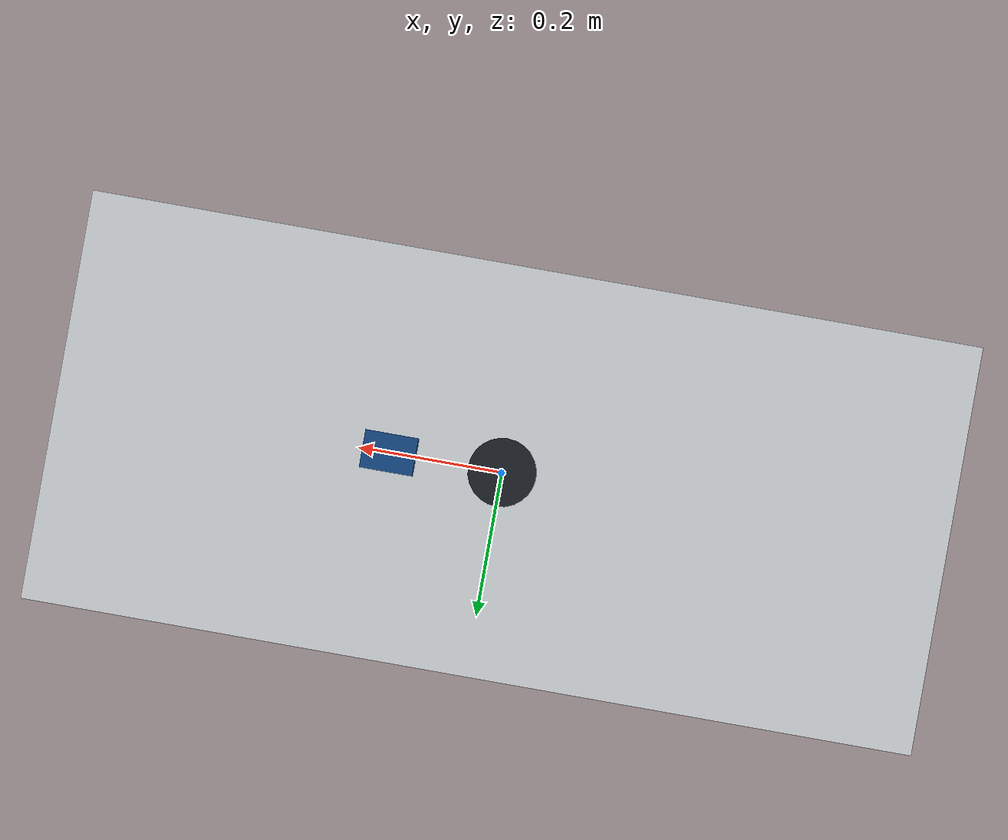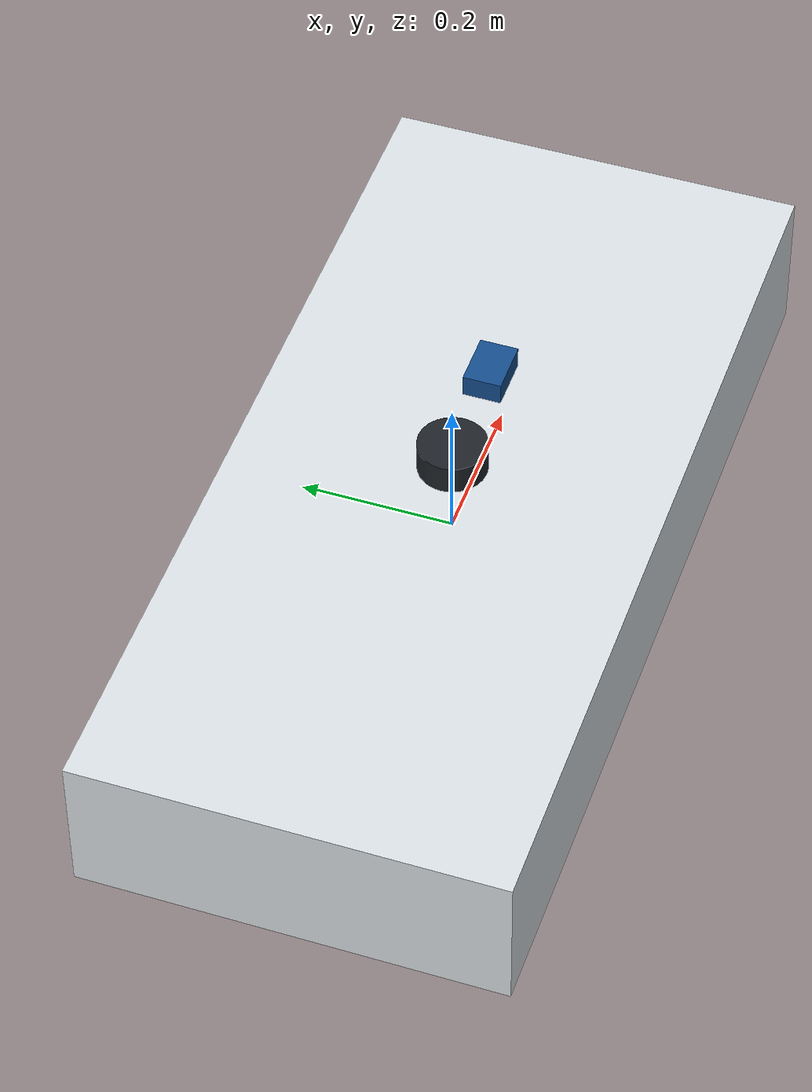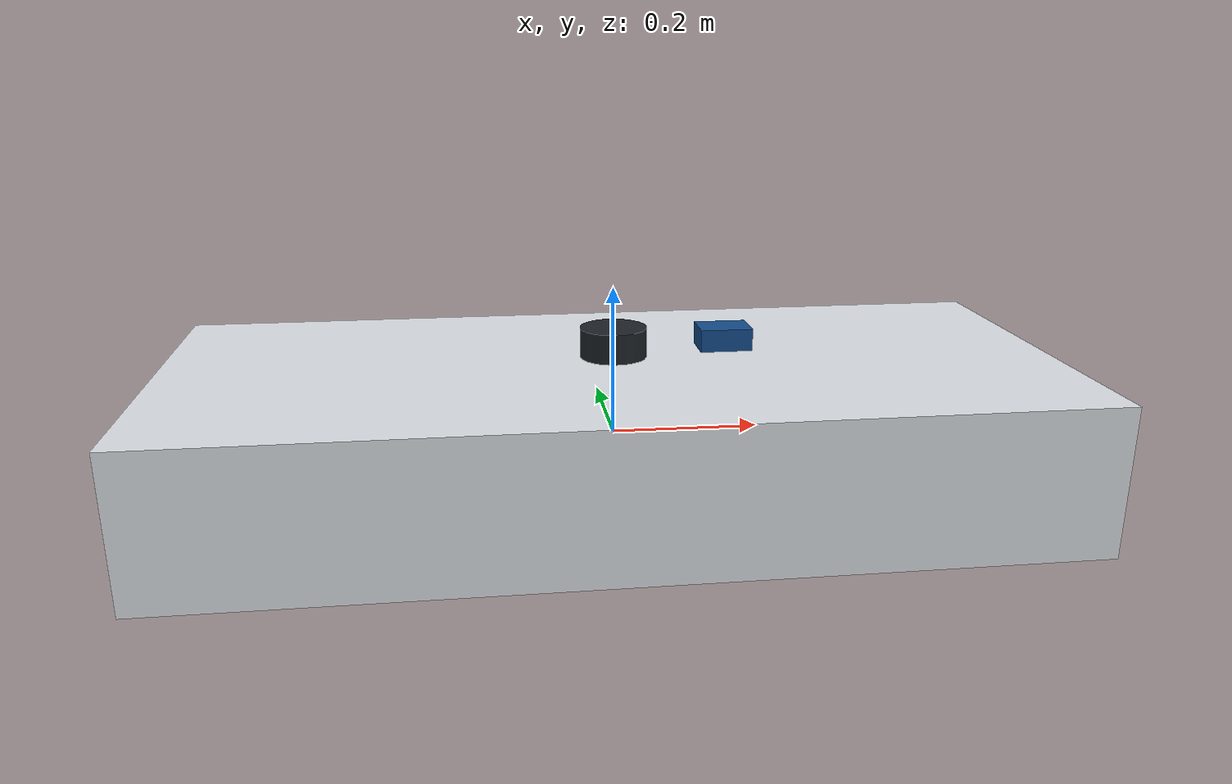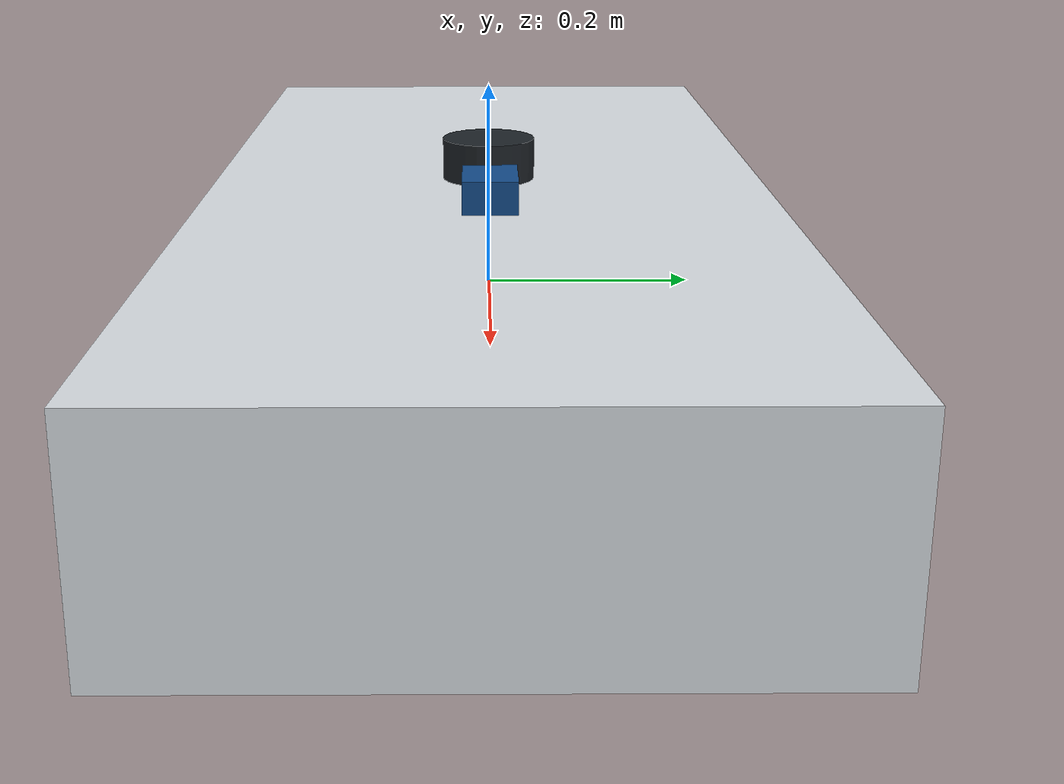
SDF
<?xml version="1.0"?>
<sdf version="1.8">
  <model name="zero_usv">
    <pose>0 0 0 0 0 0</pose>
    <static>false</static>

    <link name="zero_base_link">
      <inertial>
        <mass>12.0</mass>
        <inertia>
          <ixx>0.82</ixx>
          <ixy>0</ixy>
          <ixz>0</ixz>
          <iyy>1.46</iyy>
          <iyz>0</iyz>
          <izz>2.10</izz>
        </inertia>
      </inertial>
      <collision name="hull_collision">
        <geometry>
          <box>
            <size>1.20 0.55 0.20</size>
          </box>
        </geometry>
      </collision>
      <visual name="hull_visual">
        <geometry>
          <box>
            <size>1.20 0.55 0.20</size>
          </box>
        </geometry>
        <material>
          <ambient>0.86 0.88 0.90 1</ambient>
          <diffuse>0.86 0.88 0.90 1</diffuse>
        </material>
      </visual>
    </link>

    <link name="lidar_link">
      <pose relative_to="zero_base_link">-0.00015 -0.00040397 0.1277 0 0 0</pose>
      <inertial>
        <mass>0.08</mass>
        <inertia>
          <ixx>0.00006</ixx>
          <ixy>0</ixy>
          <ixz>0</ixz>
          <iyy>0.00006</iyy>
          <iyz>0</iyz>
          <izz>0.00008</izz>
        </inertia>
      </inertial>
      <collision name="lidar_collision">
        <geometry>
          <cylinder>
            <radius>0.045</radius>
            <length>0.04</length>
          </cylinder>
        </geometry>
      </collision>
      <visual name="lidar_visual">
        <geometry>
          <cylinder>
            <radius>0.045</radius>
            <length>0.04</length>
          </cylinder>
        </geometry>
        <material>
          <ambient>0.12 0.14 0.16 1</ambient>
          <diffuse>0.12 0.14 0.16 1</diffuse>
        </material>
      </visual>
      <sensor name="zero_lidar" type="gpu_lidar">
        <topic>/scan</topic>
        <gz_frame_id>laser_frame</gz_frame_id>
        <!-- Approximate the real YDLIDAR X2: 360 deg, 0.10-8.0 m, 4-8 Hz, 3K samples/s. -->
        <!-- 近似真实 YDLIDAR X2：360 度、0.10-8.0 m、4-8 Hz、3K samples/s。 -->
        <update_rate>6</update_rate>
        <always_on>true</always_on>
        <visualize>true</visualize>
        <ray>
          <scan>
            <horizontal>
              <samples>500</samples>
              <resolution>1</resolution>
              <min_angle>-3.14159</min_angle>
              <max_angle>3.14159</max_angle>
            </horizontal>
          </scan>
          <range>
            <min>0.10</min>
            <max>8.0</max>
            <resolution>0.01</resolution>
          </range>
          <noise>
            <type>gaussian</type>
            <mean>0.0</mean>
            <stddev>0.01</stddev>
          </noise>
        </ray>
      </sensor>
    </link>

    <link name="imu_link">
      <pose relative_to="zero_base_link">0.15 0 0.13 0 0 0</pose>
      <inertial>
        <mass>0.05</mass>
        <inertia>
          <ixx>0.00002</ixx>
          <ixy>0</ixy>
          <ixz>0</ixz>
          <iyy>0.00002</iyy>
          <iyz>0</iyz>
          <izz>0.00002</izz>
        </inertia>
      </inertial>
      <collision name="imu_collision">
        <geometry>
          <box>
            <size>0.07 0.05 0.03</size>
          </box>
        </geometry>
      </collision>
      <visual name="imu_visual">
        <geometry>
          <box>
            <size>0.07 0.05 0.03</size>
          </box>
        </geometry>
        <material>
          <ambient>0.08 0.30 0.55 1</ambient>
          <diffuse>0.08 0.30 0.55 1</diffuse>
        </material>
      </visual>
      <sensor name="zero_imu" type="imu">
        <topic>/imu</topic>
        <gz_frame_id>imu_link</gz_frame_id>
        <update_rate>100</update_rate>
        <always_on>true</always_on>
      </sensor>
    </link>

    <link name="left_virtual_wheel_link">
      <!-- Virtual wheel links exist only to drive Gazebo DiffDrive for the USV hull. -->
      <!-- 虚拟轮 link 仅用于驱动 USV 船体的 Gazebo DiffDrive。 -->
      <pose relative_to="zero_base_link">0 0.2035 -0.13 0 0 0</pose>
      <inertial>
        <mass>0.02</mass>
        <inertia>
          <ixx>0.000013166666667</ixx>
          <ixy>0</ixy>
          <ixz>0</ixz>
          <iyy>0.000025</iyy>
          <iyz>0</iyz>
          <izz>0.000013166666667</izz>
        </inertia>
      </inertial>
      <collision name="left_virtual_wheel_collision">
        <pose>0 0 0 1.57079632679 0 0</pose>
        <geometry>
          <cylinder>
            <radius>0.05</radius>
            <length>0.02</length>
          </cylinder>
        </geometry>
      </collision>
    </link>

    <link name="right_virtual_wheel_link">
      <pose relative_to="zero_base_link">0 -0.2035 -0.13 0 0 0</pose>
      <inertial>
        <mass>0.02</mass>
        <inertia>
          <ixx>0.000013166666667</ixx>
          <ixy>0</ixy>
          <ixz>0</ixz>
          <iyy>0.000025</iyy>
          <iyz>0</iyz>
          <izz>0.000013166666667</izz>
        </inertia>
      </inertial>
      <collision name="right_virtual_wheel_collision">
        <pose>0 0 0 1.57079632679 0 0</pose>
        <geometry>
          <cylinder>
            <radius>0.05</radius>
            <length>0.02</length>
          </cylinder>
        </geometry>
      </collision>
    </link>

    <joint name="left_virtual_wheel_joint" type="revolute">
      <parent>zero_base_link</parent>
      <child>left_virtual_wheel_link</child>
      <axis>
        <xyz>0 1 0</xyz>
      </axis>
    </joint>

    <joint name="right_virtual_wheel_joint" type="revolute">
      <parent>zero_base_link</parent>
      <child>right_virtual_wheel_link</child>
      <axis>
        <xyz>0 1 0</xyz>
      </axis>
    </joint>

    <joint name="zero_lidar_fixed_joint" type="fixed">
      <parent>zero_base_link</parent>
      <child>lidar_link</child>
    </joint>
    <frame name="laser_frame" attached_to="lidar_link">
      <pose>0 0 0 0 0 0</pose>
    </frame>
    <joint name="zero_imu_fixed_joint" type="fixed">
      <parent>zero_base_link</parent>
      <child>imu_link</child>
    </joint>

    <plugin filename="libignition-gazebo-diff-drive-system.so" name="ignition::gazebo::systems::DiffDrive">
      <!-- Topic, odometry, and limits mirror the ROS bridge and adapter contracts. -->
      <!-- topic、里程计和限幅与 ROS 桥接及适配器契约保持一致。 -->
      <left_joint>left_virtual_wheel_joint</left_joint>
      <right_joint>right_virtual_wheel_joint</right_joint>
      <wheel_separation>0.407</wheel_separation>
      <wheel_radius>0.05</wheel_radius>
      <odom_publish_frequency>50</odom_publish_frequency>
      <topic>/model/zero_usv/cmd_vel</topic>
      <odom_topic>/model/zero_usv/odometry</odom_topic>
      <tf_topic>/model/zero_usv/diff_drive_tf_unbridged</tf_topic>
      <frame_id>odom</frame_id>
      <child_frame_id>zero_base_link</child_frame_id>
      <min_linear_velocity>-1.0</min_linear_velocity>
      <max_linear_velocity>1.0</max_linear_velocity>
      <min_angular_velocity>-1.0</min_angular_velocity>
      <max_angular_velocity>1.0</max_angular_velocity>
      <min_linear_acceleration>-1.0</min_linear_acceleration>
      <max_linear_acceleration>1.0</max_linear_acceleration>
      <min_angular_acceleration>-1.0</min_angular_acceleration>
      <max_angular_acceleration>1.0</max_angular_acceleration>
    </plugin>
  </model>
</sdf>
